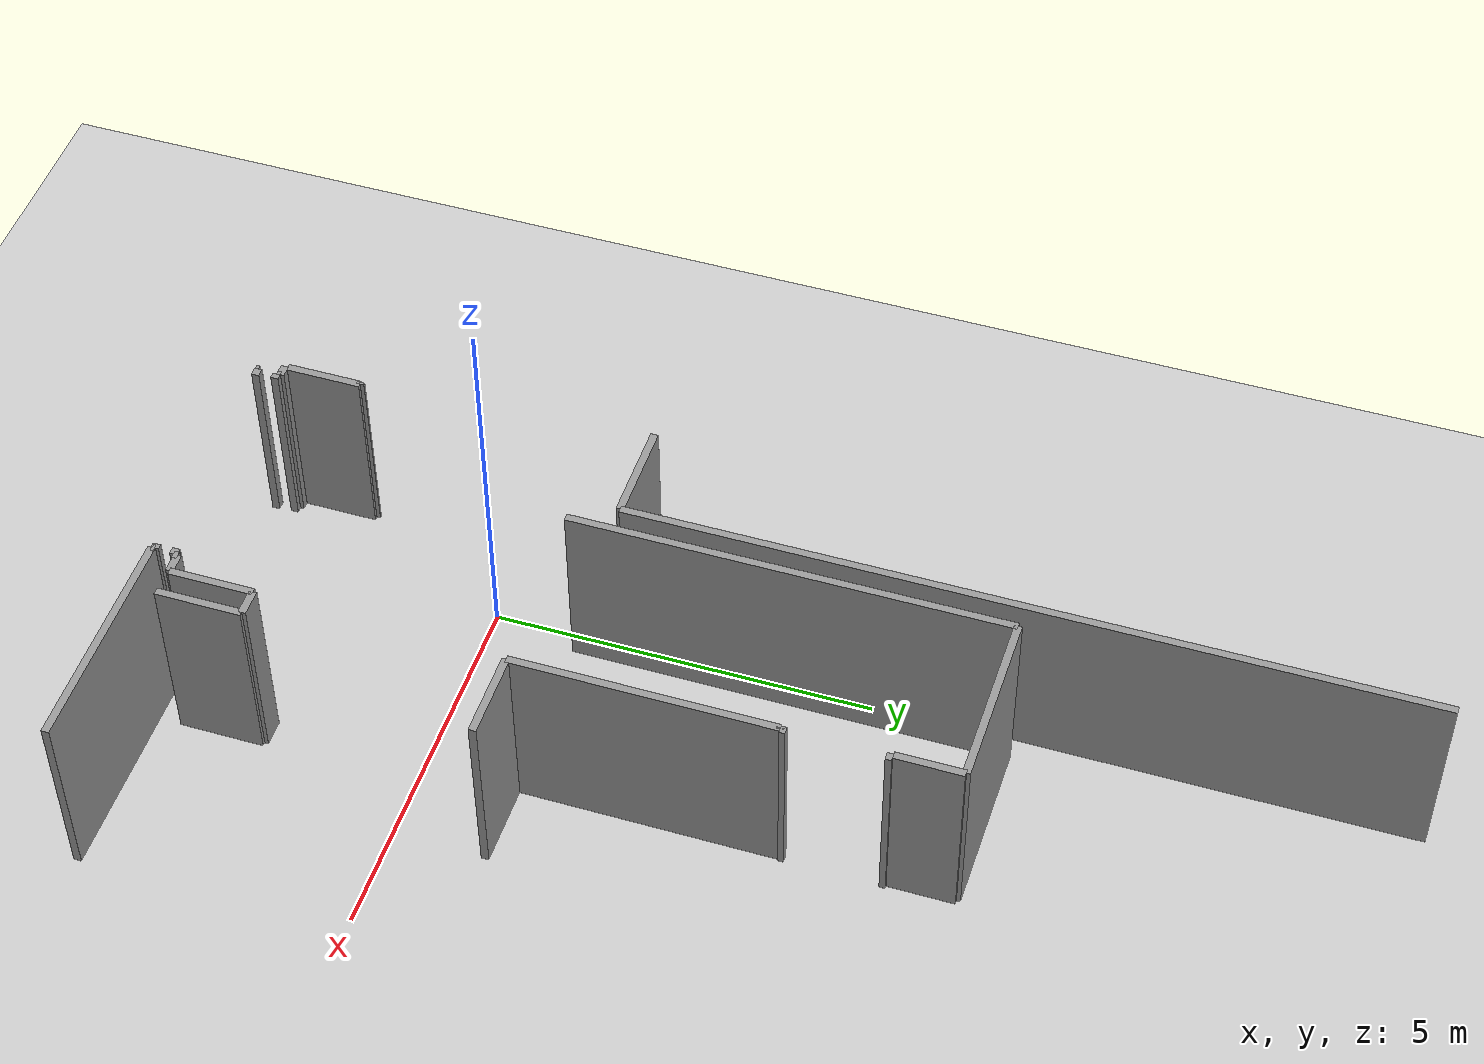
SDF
<sdf version="1.6">
 <world name="default">
  <model name="ground_plane">
   <static>1</static>
   <link name="link">
    <collision name="collision">
     <geometry><plane><normal>0 0 1</normal><size>100 100</size></plane></geometry>
     <surface><friction><ode><mu>100</mu><mu2>50</mu2></ode></friction></surface>
    </collision>
    <visual name="visual">
     <cast_shadows>0</cast_shadows>
     <geometry><plane><normal>0 0 1</normal><size>100 100</size></plane></geometry>
     <material>
      <script><uri>file://media/materials/scripts/gazebo.material</uri><name>Gazebo/Grey</name></script>
     </material>
    </visual>
   </link>
  </model>
  <model name="0510030940_A_40_1_104">
   <static>1</static>
   <link name="Wall_2">
    <collision name="Wall_2_Collision">
     <geometry><box><size>10.2911202602 0.1 2.5</size></box></geometry>
     <pose>5.14556013012 0 1.25 0 0 0</pose>
    </collision>
    <visual name="Wall_2_Visual">
     <pose>5.14556013012 0 1.25 0 0 0</pose>
     <geometry><box><size>10.2911202602 0.1 2.5</size></box></geometry>
     <material>
      <script><uri>file://media/materials/scripts/gazebo.material</uri><name>Gazebo/Grey</name></script>
      <ambient>1 1 1 1</ambient>
     </material>
    </visual>
    <pose>23.6292823015 -0.0 0 0 0 -1.57079632679</pose>
   </link>
   <link name="Wall_3">
    <collision name="Wall_3_Collision">
     <geometry><box><size>1.30629256887 0.1 2.5</size></box></geometry>
     <pose>0.653146284436 0 1.25 0 0 0</pose>
    </collision>
    <visual name="Wall_3_Visual">
     <pose>0.653146284436 0 1.25 0 0 0</pose>
     <geometry><box><size>1.30629256887 0.1 2.5</size></box></geometry>
     <material>
      <script><uri>file://media/materials/scripts/gazebo.material</uri><name>Gazebo/Grey</name></script>
      <ambient>1 1 1 1</ambient>
     </material>
    </visual>
    <pose>23.6292823015 -10.2911202602 0 0 0 3.14159265359</pose>
   </link>
   <link name="Wall_17">
    <collision name="Wall_17_Collision">
     <geometry><box><size>0.977813357731 0.1 2.5</size></box></geometry>
     <pose>0.488906678866 0 1.25 0 0 0</pose>
    </collision>
    <visual name="Wall_17_Visual">
     <pose>0.488906678866 0 1.25 0 0 0</pose>
     <geometry><box><size>0.977813357731 0.1 2.5</size></box></geometry>
     <material>
      <script><uri>file://media/materials/scripts/gazebo.material</uri><name>Gazebo/Grey</name></script>
      <ambient>1 1 1 1</ambient>
     </material>
    </visual>
    <pose>22.6310104707 -15.0811985361 0 0 0 1.57079632679</pose>
   </link>
   <link name="Wall_18">
    <collision name="Wall_18_Collision">
     <geometry><box><size>0.0330385280065 0.1 2.5</size></box></geometry>
     <pose>0.0165192640033 0 1.25 0 0 0</pose>
    </collision>
    <visual name="Wall_18_Visual">
     <pose>0.0165192640033 0 1.25 0 0 0</pose>
     <geometry><box><size>0.0330385280065 0.1 2.5</size></box></geometry>
     <material>
      <script><uri>file://media/materials/scripts/gazebo.material</uri><name>Gazebo/Grey</name></script>
      <ambient>1 1 1 1</ambient>
     </material>
    </visual>
    <pose>22.6310104707 -14.1033851784 0 0 0 3.14159265359</pose>
   </link>
   <link name="Wall_22">
    <collision name="Wall_22_Collision">
     <geometry><box><size>5.69139473417 0.1 2.5</size></box></geometry>
     <pose>2.84569736708 0 1.25 0 0 0</pose>
    </collision>
    <visual name="Wall_22_Visual">
     <pose>2.84569736708 0 1.25 0 0 0</pose>
     <geometry><box><size>5.69139473417 0.1 2.5</size></box></geometry>
     <material>
      <script><uri>file://media/materials/scripts/gazebo.material</uri><name>Gazebo/Grey</name></script>
      <ambient>1 1 1 1</ambient>
     </material>
    </visual>
    <pose>23.955982515 -10.876918776 0 0 0 1.57079632679</pose>
   </link>
   <link name="Wall_23">
    <collision name="Wall_23_Collision">
     <geometry><box><size>2.30519975602 0.1 2.5</size></box></geometry>
     <pose>1.15259987801 0 1.25 0 0 0</pose>
    </collision>
    <visual name="Wall_23_Visual">
     <pose>1.15259987801 0 1.25 0 0 0</pose>
     <geometry><box><size>2.30519975602 0.1 2.5</size></box></geometry>
     <material>
      <script><uri>file://media/materials/scripts/gazebo.material</uri><name>Gazebo/Grey</name></script>
      <ambient>1 1 1 1</ambient>
     </material>
    </visual>
    <pose>23.955982515 -5.18552404188 0 0 0 0.0</pose>
   </link>
   <link name="Wall_24">
    <collision name="Wall_24_Collision">
     <geometry><box><size>0.864465792416 0.1 2.5</size></box></geometry>
     <pose>0.432232896208 0 1.25 0 0 0</pose>
    </collision>
    <visual name="Wall_24_Visual">
     <pose>0.432232896208 0 1.25 0 0 0</pose>
     <geometry><box><size>0.864465792416 0.1 2.5</size></box></geometry>
     <material>
      <script><uri>file://media/materials/scripts/gazebo.material</uri><name>Gazebo/Grey</name></script>
      <ambient>1 1 1 1</ambient>
     </material>
    </visual>
    <pose>26.261182271 -5.18552404188 0 0 0 -1.57079632679</pose>
   </link>
   <link name="Wall_25">
    <collision name="Wall_25_Collision">
     <geometry><box><size>0.0363423808072 0.1 2.5</size></box></geometry>
     <pose>0.0181711904036 0 1.25 0 0 0</pose>
    </collision>
    <visual name="Wall_25_Visual">
     <pose>0.0181711904036 0 1.25 0 0 0</pose>
     <geometry><box><size>0.0363423808072 0.1 2.5</size></box></geometry>
     <material>
      <script><uri>file://media/materials/scripts/gazebo.material</uri><name>Gazebo/Grey</name></script>
      <ambient>1 1 1 1</ambient>
     </material>
    </visual>
    <pose>26.261182271 -6.0499898343 0 0 0 0.0</pose>
   </link>
   <link name="Wall_26">
    <collision name="Wall_26_Collision">
     <geometry><box><size>0.079165395954 0.1 2.5</size></box></geometry>
     <pose>0.039582697977 0 1.25 0 0 0</pose>
    </collision>
    <visual name="Wall_26_Visual">
     <pose>0.039582697977 0 1.25 0 0 0</pose>
     <geometry><box><size>0.079165395954 0.1 2.5</size></box></geometry>
     <material>
      <script><uri>file://media/materials/scripts/gazebo.material</uri><name>Gazebo/Grey</name></script>
      <ambient>1 1 1 1</ambient>
     </material>
    </visual>
    <pose>26.2975246518 -6.0499898343 0 0 0 -1.57079632679</pose>
   </link>
   <link name="Wall_27">
    <collision name="Wall_27_Collision">
     <geometry><box><size>0.0738284029684 0.1 2.5</size></box></geometry>
     <pose>0.0369142014842 0 1.25 0 0 0</pose>
    </collision>
    <visual name="Wall_27_Visual">
     <pose>0.0369142014842 0 1.25 0 0 0</pose>
     <geometry><box><size>0.0738284029684 0.1 2.5</size></box></geometry>
     <material>
      <script><uri>file://media/materials/scripts/gazebo.material</uri><name>Gazebo/Grey</name></script>
      <ambient>1 1 1 1</ambient>
     </material>
    </visual>
    <pose>26.2975246518 -7.33086815086 0 0 0 -1.57079632679</pose>
   </link>
   <link name="Wall_28">
    <collision name="Wall_28_Collision">
     <geometry><box><size>0.0190606892345 0.1 2.5</size></box></geometry>
     <pose>0.00953034461726 0 1.25 0 0 0</pose>
    </collision>
    <visual name="Wall_28_Visual">
     <pose>0.00953034461726 0 1.25 0 0 0</pose>
     <geometry><box><size>0.0190606892345 0.1 2.5</size></box></geometry>
     <material>
      <script><uri>file://media/materials/scripts/gazebo.material</uri><name>Gazebo/Grey</name></script>
      <ambient>1 1 1 1</ambient>
     </material>
    </visual>
    <pose>26.2975246518 -7.40469655383 0 0 0 3.14159265359</pose>
   </link>
   <link name="Wall_29">
    <collision name="Wall_29_Collision">
     <geometry><box><size>3.37717291857 0.1 2.5</size></box></geometry>
     <pose>1.68858645929 0 1.25 0 0 0</pose>
    </collision>
    <visual name="Wall_29_Visual">
     <pose>1.68858645929 0 1.25 0 0 0</pose>
     <geometry><box><size>3.37717291857 0.1 2.5</size></box></geometry>
     <material>
      <script><uri>file://media/materials/scripts/gazebo.material</uri><name>Gazebo/Grey</name></script>
      <ambient>1 1 1 1</ambient>
     </material>
    </visual>
    <pose>26.2784639626 -7.40469655383 0 0 0 -1.57079632679</pose>
   </link>
   <link name="Wall_30">
    <collision name="Wall_30_Collision">
     <geometry><box><size>1.12534309241 0.1 2.5</size></box></geometry>
     <pose>0.562671546203 0 1.25 0 0 0</pose>
    </collision>
    <visual name="Wall_30_Visual">
     <pose>0.562671546203 0 1.25 0 0 0</pose>
     <geometry><box><size>1.12534309241 0.1 2.5</size></box></geometry>
     <material>
      <script><uri>file://media/materials/scripts/gazebo.material</uri><name>Gazebo/Grey</name></script>
      <ambient>1 1 1 1</ambient>
     </material>
    </visual>
    <pose>26.2784639626 -10.7818694724 0 0 0 0.0</pose>
   </link>
   <link name="Wall_37">
    <collision name="Wall_37_Collision">
     <geometry><box><size>1.1131442513 0.1 2.5</size></box></geometry>
     <pose>0.556572125648 0 1.25 0 0 0</pose>
    </collision>
    <visual name="Wall_37_Visual">
     <pose>0.556572125648 0 1.25 0 0 0</pose>
     <geometry><box><size>1.1131442513 0.1 2.5</size></box></geometry>
     <material>
      <script><uri>file://media/materials/scripts/gazebo.material</uri><name>Gazebo/Grey</name></script>
      <ambient>1 1 1 1</ambient>
     </material>
    </visual>
    <pose>26.5688217953 -15.1343143235 0 0 0 1.57079632679</pose>
   </link>
   <link name="Wall_38">
    <collision name="Wall_38_Collision">
     <geometry><box><size>0.34220290739 0.1 2.5</size></box></geometry>
     <pose>0.171101453695 0 1.25 0 0 0</pose>
    </collision>
    <visual name="Wall_38_Visual">
     <pose>0.171101453695 0 1.25 0 0 0</pose>
     <geometry><box><size>0.34220290739 0.1 2.5</size></box></geometry>
     <material>
      <script><uri>file://media/materials/scripts/gazebo.material</uri><name>Gazebo/Grey</name></script>
      <ambient>1 1 1 1</ambient>
     </material>
    </visual>
    <pose>26.5688217953 -14.0211700722 0 0 0 3.14159265359</pose>
   </link>
   <link name="Wall_39">
    <collision name="Wall_39_Collision">
     <geometry><box><size>1.08938192538 0.1 2.5</size></box></geometry>
     <pose>0.544690962692 0 1.25 0 0 0</pose>
    </collision>
    <visual name="Wall_39_Visual">
     <pose>0.544690962692 0 1.25 0 0 0</pose>
     <geometry><box><size>1.08938192538 0.1 2.5</size></box></geometry>
     <material>
      <script><uri>file://media/materials/scripts/gazebo.material</uri><name>Gazebo/Grey</name></script>
      <ambient>1 1 1 1</ambient>
     </material>
    </visual>
    <pose>26.2266188879 -14.0211700722 0 0 0 -1.57079632679</pose>
   </link>
   <link name="Wall_40">
    <collision name="Wall_40_Collision">
     <geometry><box><size>0.257954660974 0.1 2.5</size></box></geometry>
     <pose>0.128977330487 0 1.25 0 0 0</pose>
    </collision>
    <visual name="Wall_40_Visual">
     <pose>0.128977330487 0 1.25 0 0 0</pose>
     <geometry><box><size>0.257954660974 0.1 2.5</size></box></geometry>
     <material>
      <script><uri>file://media/materials/scripts/gazebo.material</uri><name>Gazebo/Grey</name></script>
      <ambient>1 1 1 1</ambient>
     </material>
    </visual>
    <pose>26.2266188879 -15.1105519976 0 0 0 3.14159265359</pose>
   </link>
   <link name="Wall_41">
    <collision name="Wall_41_Collision">
     <geometry><box><size>0.062010775643 0.1 2.5</size></box></geometry>
     <pose>0.0310053878215 0 1.25 0 0 0</pose>
    </collision>
    <visual name="Wall_41_Visual">
     <pose>0.0310053878215 0 1.25 0 0 0</pose>
     <geometry><box><size>0.062010775643 0.1 2.5</size></box></geometry>
     <material>
      <script><uri>file://media/materials/scripts/gazebo.material</uri><name>Gazebo/Grey</name></script>
      <ambient>1 1 1 1</ambient>
     </material>
    </visual>
    <pose>25.9686642269 -15.1105519976 0 0 0 -1.57079632679</pose>
   </link>
   <link name="Wall_42">
    <collision name="Wall_42_Collision">
     <geometry><box><size>0.0970824438345 0.1 2.5</size></box></geometry>
     <pose>0.0485412219173 0 1.25 0 0 0</pose>
    </collision>
    <visual name="Wall_42_Visual">
     <pose>0.0485412219173 0 1.25 0 0 0</pose>
     <geometry><box><size>0.0970824438345 0.1 2.5</size></box></geometry>
     <material>
      <script><uri>file://media/materials/scripts/gazebo.material</uri><name>Gazebo/Grey</name></script>
      <ambient>1 1 1 1</ambient>
     </material>
    </visual>
    <pose>25.9686642269 -15.1725627732 0 0 0 3.14159265359</pose>
   </link>
   <link name="Wall_43">
    <collision name="Wall_43_Collision">
     <geometry><box><size>0.0784029683847 0.1 2.5</size></box></geometry>
     <pose>0.0392014841923 0 1.25 0 0 0</pose>
    </collision>
    <visual name="Wall_43_Visual">
     <pose>0.0392014841923 0 1.25 0 0 0</pose>
     <geometry><box><size>0.0784029683847 0.1 2.5</size></box></geometry>
     <material>
      <script><uri>file://media/materials/scripts/gazebo.material</uri><name>Gazebo/Grey</name></script>
      <ambient>1 1 1 1</ambient>
     </material>
    </visual>
    <pose>22.8645674494 -15.1725627732 0 0 0 3.14159265359</pose>
   </link>
   <link name="Wall_44">
    <collision name="Wall_44_Collision">
     <geometry><box><size>0.0482870793941 0.1 2.5</size></box></geometry>
     <pose>0.0241435396971 0 1.25 0 0 0</pose>
    </collision>
    <visual name="Wall_44_Visual">
     <pose>0.0241435396971 0 1.25 0 0 0</pose>
     <geometry><box><size>0.0482870793941 0.1 2.5</size></box></geometry>
     <material>
      <script><uri>file://media/materials/scripts/gazebo.material</uri><name>Gazebo/Grey</name></script>
      <ambient>1 1 1 1</ambient>
     </material>
    </visual>
    <pose>22.786164481 -15.1725627732 0 0 0 1.57079632679</pose>
   </link>
   <link name="Wall_45">
    <collision name="Wall_45_Collision">
     <geometry><box><size>0.156805936769 0.1 2.5</size></box></geometry>
     <pose>0.0784029683847 0 1.25 0 0 0</pose>
    </collision>
    <visual name="Wall_45_Visual">
     <pose>0.0784029683847 0 1.25 0 0 0</pose>
     <geometry><box><size>0.156805936769 0.1 2.5</size></box></geometry>
     <material>
      <script><uri>file://media/materials/scripts/gazebo.material</uri><name>Gazebo/Grey</name></script>
      <ambient>1 1 1 1</ambient>
     </material>
    </visual>
    <pose>22.786164481 -15.1242756938 0 0 0 3.14159265359</pose>
   </link>
   <link name="Wall_53">
    <collision name="Wall_53_Collision">
     <geometry><box><size>0.0415523025313 0.1 2.5</size></box></geometry>
     <pose>0.0207761512656 0 1.25 0 0 0</pose>
    </collision>
    <visual name="Wall_53_Visual">
     <pose>0.0207761512656 0 1.25 0 0 0</pose>
     <geometry><box><size>0.0415523025313 0.1 2.5</size></box></geometry>
     <material>
      <script><uri>file://media/materials/scripts/gazebo.material</uri><name>Gazebo/Grey</name></script>
      <ambient>1 1 1 1</ambient>
     </material>
    </visual>
    <pose>22.7740927112 -15.4681305276 0 0 0 1.57079632679</pose>
   </link>
   <link name="Wall_54">
    <collision name="Wall_54_Collision">
     <geometry><box><size>0.109281284945 0.1 2.5</size></box></geometry>
     <pose>0.0546406424723 0 1.25 0 0 0</pose>
    </collision>
    <visual name="Wall_54_Visual">
     <pose>0.0546406424723 0 1.25 0 0 0</pose>
     <geometry><box><size>0.109281284945 0.1 2.5</size></box></geometry>
     <material>
      <script><uri>file://media/materials/scripts/gazebo.material</uri><name>Gazebo/Grey</name></script>
      <ambient>1 1 1 1</ambient>
     </material>
    </visual>
    <pose>22.7740927112 -15.4265782251 0 0 0 0.0</pose>
   </link>
   <link name="Wall_55">
    <collision name="Wall_55_Collision">
     <geometry><box><size>0.0731930466606 0.1 2.5</size></box></geometry>
     <pose>0.0365965233303 0 1.25 0 0 0</pose>
    </collision>
    <visual name="Wall_55_Visual">
     <pose>0.0365965233303 0 1.25 0 0 0</pose>
     <geometry><box><size>0.0731930466606 0.1 2.5</size></box></geometry>
     <material>
      <script><uri>file://media/materials/scripts/gazebo.material</uri><name>Gazebo/Grey</name></script>
      <ambient>1 1 1 1</ambient>
     </material>
    </visual>
    <pose>25.8748856359 -15.4265782251 0 0 0 0.0</pose>
   </link>
   <link name="Wall_56">
    <collision name="Wall_56_Collision">
     <geometry><box><size>0.0386296635153 0.1 2.5</size></box></geometry>
     <pose>0.0193148317577 0 1.25 0 0 0</pose>
    </collision>
    <visual name="Wall_56_Visual">
     <pose>0.0193148317577 0 1.25 0 0 0</pose>
     <geometry><box><size>0.0386296635153 0.1 2.5</size></box></geometry>
     <material>
      <script><uri>file://media/materials/scripts/gazebo.material</uri><name>Gazebo/Grey</name></script>
      <ambient>1 1 1 1</ambient>
     </material>
    </visual>
    <pose>25.9480786825 -15.4265782251 0 0 0 -1.57079632679</pose>
   </link>
   <link name="Wall_57">
    <collision name="Wall_57_Collision">
     <geometry><box><size>2.97994815493 0.1 2.5</size></box></geometry>
     <pose>1.48997407746 0 1.25 0 0 0</pose>
    </collision>
    <visual name="Wall_57_Visual">
     <pose>1.48997407746 0 1.25 0 0 0</pose>
     <geometry><box><size>2.97994815493 0.1 2.5</size></box></geometry>
     <material>
      <script><uri>file://media/materials/scripts/gazebo.material</uri><name>Gazebo/Grey</name></script>
      <ambient>1 1 1 1</ambient>
     </material>
    </visual>
    <pose>25.9480786825 -15.4652078886 0 0 0 0.0</pose>
   </link>
   <pose>-23.75 11.9814577615 0 0 0 0</pose>
  </model>
 </world>
</sdf>
